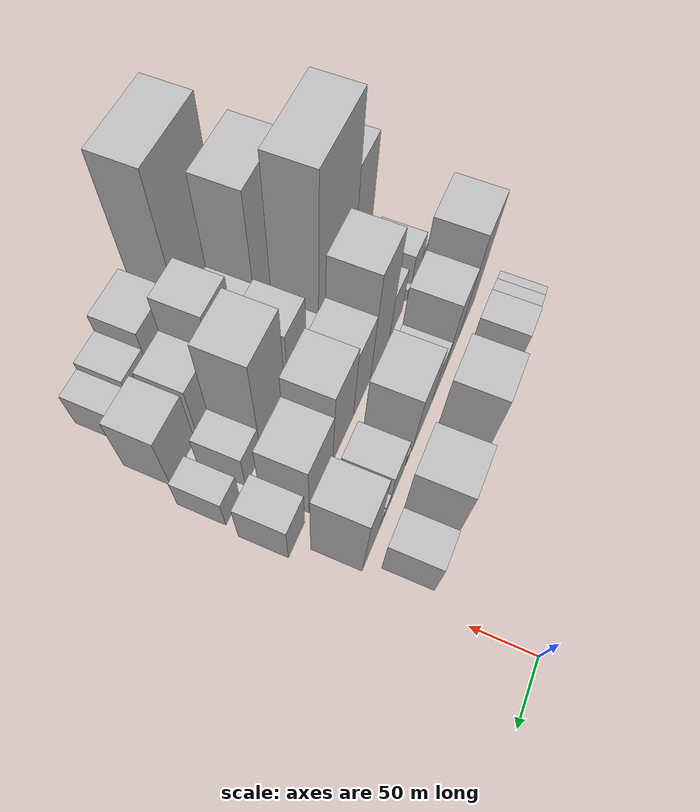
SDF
<sdf version="1.6">
 <world name="default">
  <model name="building_18">
   <static>1</static>
   <pose>100.0000 -264.2371 0 0.000000 0.000000 0.000000</pose>
   <link name="link">
    <pose>0 0 15.00 0 0 0</pose>
    <collision name="collision"><geometry><box><size>40.0000 15.0983 30.0000</size></box></geometry></collision>
    <visual name="visual">
     <cast_shadows>0</cast_shadows>
     <geometry><box><size>40.0000 15.0983 30.0000</size></box></geometry>
     <material>
      <script>
       <uri>model://HANNAS_wall/materials/scripts</uri>
       <uri>model://HANNAS_wall/materials/textures</uri>
       <name>vrc/HANNAS_wall</name>
      </script>
     </material>
    </visual>
   </link>
  </model>
  <model name="building_19">
   <static>1</static>
   <pose>100.0000 -245.3737 0 0.000000 0.000000 0.000000</pose>
   <link name="link">
    <pose>0 0 19.50 0 0 0</pose>
    <collision name="collision"><geometry><box><size>40.0000 22.6286 39.0000</size></box></geometry></collision>
    <visual name="visual">
     <cast_shadows>0</cast_shadows>
     <geometry><box><size>40.0000 22.6286 39.0000</size></box></geometry>
     <material>
      <script>
       <uri>model://HANNAS_wall/materials/scripts</uri>
       <uri>model://HANNAS_wall/materials/textures</uri>
       <name>vrc/HANNAS_wall</name>
      </script>
     </material>
    </visual>
   </link>
  </model>
  <model name="building_20">
   <static>1</static>
   <pose>100.0000 -219.8085 0 0.000000 0.000000 0.000000</pose>
   <link name="link">
    <pose>0 0 27.00 0 0 0</pose>
    <collision name="collision"><geometry><box><size>40.0000 28.5018 54.0000</size></box></geometry></collision>
    <visual name="visual">
     <cast_shadows>0</cast_shadows>
     <geometry><box><size>40.0000 28.5018 54.0000</size></box></geometry>
     <material>
      <script>
       <uri>model://HANNAS_wall/materials/scripts</uri>
       <uri>model://HANNAS_wall/materials/textures</uri>
       <name>vrc/HANNAS_wall</name>
      </script>
     </material>
    </visual>
   </link>
  </model>
  <model name="building_21">
   <static>1</static>
   <pose>100.0000 -200.2709 0 0.000000 0.000000 0.000000</pose>
   <link name="link">
    <pose>0 0 12.00 0 0 0</pose>
    <collision name="collision"><geometry><box><size>40.0000 10.5735 24.0000</size></box></geometry></collision>
    <visual name="visual">
     <cast_shadows>0</cast_shadows>
     <geometry><box><size>40.0000 10.5735 24.0000</size></box></geometry>
     <material>
      <script>
       <uri>model://HANNAS_wall/materials/scripts</uri>
       <uri>model://HANNAS_wall/materials/textures</uri>
       <name>vrc/HANNAS_wall</name>
      </script>
     </material>
    </visual>
   </link>
  </model>
  <model name="building_22">
   <static>1</static>
   <pose>100.0000 -174.5766 0 0.000000 0.000000 0.000000</pose>
   <link name="link">
    <pose>0 0 27.00 0 0 0</pose>
    <collision name="collision"><geometry><box><size>40.0000 30.8150 54.0000</size></box></geometry></collision>
    <visual name="visual">
     <cast_shadows>0</cast_shadows>
     <geometry><box><size>40.0000 30.8150 54.0000</size></box></geometry>
     <material>
      <script>
       <uri>model://HANNAS_wall/materials/scripts</uri>
       <uri>model://HANNAS_wall/materials/textures</uri>
       <name>vrc/HANNAS_wall</name>
      </script>
     </material>
    </visual>
   </link>
  </model>
  <model name="building_23">
   <static>1</static>
   <pose>100.0000 -139.5896 0 0.000000 0.000000 0.000000</pose>
   <link name="link">
    <pose>0 0 51.00 0 0 0</pose>
    <collision name="collision"><geometry><box><size>40.0000 39.1590 102.0000</size></box></geometry></collision>
    <visual name="visual">
     <cast_shadows>0</cast_shadows>
     <geometry><box><size>40.0000 39.1590 102.0000</size></box></geometry>
     <material>
      <script>
       <uri>model://HANNAS_wall/materials/scripts</uri>
       <uri>model://HANNAS_wall/materials/textures</uri>
       <name>vrc/HANNAS_wall</name>
      </script>
     </material>
    </visual>
   </link>
  </model>
  <model name="building_24">
   <static>1</static>
   <pose>100.0000 -112.6292 0 0.000000 0.000000 0.000000</pose>
   <link name="link">
    <pose>0 0 9.00 0 0 0</pose>
    <collision name="collision"><geometry><box><size>40.0000 8.7618 18.0000</size></box></geometry></collision>
    <visual name="visual">
     <cast_shadows>0</cast_shadows>
     <geometry><box><size>40.0000 8.7618 18.0000</size></box></geometry>
     <material>
      <script>
       <uri>model://HANNAS_wall/materials/scripts</uri>
       <uri>model://HANNAS_wall/materials/textures</uri>
       <name>vrc/HANNAS_wall</name>
      </script>
     </material>
    </visual>
   </link>
  </model>
  <model name="building_25">
   <static>1</static>
   <pose>100.0000 -92.9114 0 0.000000 0.000000 0.000000</pose>
   <link name="link">
    <pose>0 0 16.50 0 0 0</pose>
    <collision name="collision"><geometry><box><size>40.0000 16.6737 33.0000</size></box></geometry></collision>
    <visual name="visual">
     <cast_shadows>0</cast_shadows>
     <geometry><box><size>40.0000 16.6737 33.0000</size></box></geometry>
     <material>
      <script>
       <uri>model://HANNAS_wall/materials/scripts</uri>
       <uri>model://HANNAS_wall/materials/textures</uri>
       <name>vrc/HANNAS_wall</name>
      </script>
     </material>
    </visual>
   </link>
  </model>
  <model name="building_26">
   <static>1</static>
   <pose>100.0000 -65.4804 0 0.000000 0.000000 0.000000</pose>
   <link name="link">
    <pose>0 0 54.00 0 0 0</pose>
    <collision name="collision"><geometry><box><size>40.0000 38.1882 108.0000</size></box></geometry></collision>
    <visual name="visual">
     <cast_shadows>0</cast_shadows>
     <geometry><box><size>40.0000 38.1882 108.0000</size></box></geometry>
     <material>
      <script>
       <uri>model://HANNAS_wall/materials/scripts</uri>
       <uri>model://HANNAS_wall/materials/textures</uri>
       <name>vrc/HANNAS_wall</name>
      </script>
     </material>
    </visual>
   </link>
  </model>
  <model name="building_27">
   <static>1</static>
   <pose>100.0000 -28.5838 0 0.000000 0.000000 0.000000</pose>
   <link name="link">
    <pose>0 0 27.00 0 0 0</pose>
    <collision name="collision"><geometry><box><size>40.0000 29.6051 54.0000</size></box></geometry></collision>
    <visual name="visual">
     <cast_shadows>0</cast_shadows>
     <geometry><box><size>40.0000 29.6051 54.0000</size></box></geometry>
     <material>
      <script>
       <uri>model://HANNAS_wall/materials/scripts</uri>
       <uri>model://HANNAS_wall/materials/textures</uri>
       <name>vrc/HANNAS_wall</name>
      </script>
     </material>
    </visual>
   </link>
  </model>
  <model name="building_69">
   <static>1</static>
   <pose>152.0000 -235.4173 0 0.000000 0.000000 0.000000</pose>
   <link name="link">
    <pose>0 0 67.50 0 0 0</pose>
    <collision name="collision"><geometry><box><size>40.0000 42.8620 135.0000</size></box></geometry></collision>
    <visual name="visual">
     <cast_shadows>0</cast_shadows>
     <geometry><box><size>40.0000 42.8620 135.0000</size></box></geometry>
     <material>
      <script>
       <uri>model://HANNAS_wall/materials/scripts</uri>
       <uri>model://HANNAS_wall/materials/textures</uri>
       <name>vrc/HANNAS_wall</name>
      </script>
     </material>
    </visual>
   </link>
  </model>
  <model name="building_70">
   <static>1</static>
   <pose>152.0000 -196.4775 0 0.000000 0.000000 0.000000</pose>
   <link name="link">
    <pose>0 0 49.50 0 0 0</pose>
    <collision name="collision"><geometry><box><size>40.0000 35.0175 99.0000</size></box></geometry></collision>
    <visual name="visual">
     <cast_shadows>0</cast_shadows>
     <geometry><box><size>40.0000 35.0175 99.0000</size></box></geometry>
     <material>
      <script>
       <uri>model://HANNAS_wall/materials/scripts</uri>
       <uri>model://HANNAS_wall/materials/textures</uri>
       <name>vrc/HANNAS_wall</name>
      </script>
     </material>
    </visual>
   </link>
  </model>
  <model name="building_71">
   <static>1</static>
   <pose>152.0000 -165.6254 0 0.000000 0.000000 0.000000</pose>
   <link name="link">
    <pose>0 0 25.50 0 0 0</pose>
    <collision name="collision"><geometry><box><size>40.0000 26.6867 51.0000</size></box></geometry></collision>
    <visual name="visual">
     <cast_shadows>0</cast_shadows>
     <geometry><box><size>40.0000 26.6867 51.0000</size></box></geometry>
     <material>
      <script>
       <uri>model://HANNAS_wall/materials/scripts</uri>
       <uri>model://HANNAS_wall/materials/textures</uri>
       <name>vrc/HANNAS_wall</name>
      </script>
     </material>
    </visual>
   </link>
  </model>
  <model name="building_72">
   <static>1</static>
   <pose>152.0000 -129.5219 0 0.000000 0.000000 0.000000</pose>
   <link name="link">
    <pose>0 0 42.00 0 0 0</pose>
    <collision name="collision"><geometry><box><size>40.0000 45.5203 84.0000</size></box></geometry></collision>
    <visual name="visual">
     <cast_shadows>0</cast_shadows>
     <geometry><box><size>40.0000 45.5203 84.0000</size></box></geometry>
     <material>
      <script>
       <uri>model://HANNAS_wall/materials/scripts</uri>
       <uri>model://HANNAS_wall/materials/textures</uri>
       <name>vrc/HANNAS_wall</name>
      </script>
     </material>
    </visual>
   </link>
  </model>
  <model name="building_73">
   <static>1</static>
   <pose>152.0000 -97.8684 0 0.000000 0.000000 0.000000</pose>
   <link name="link">
    <pose>0 0 9.00 0 0 0</pose>
    <collision name="collision"><geometry><box><size>40.0000 7.7866 18.0000</size></box></geometry></collision>
    <visual name="visual">
     <cast_shadows>0</cast_shadows>
     <geometry><box><size>40.0000 7.7866 18.0000</size></box></geometry>
     <material>
      <script>
       <uri>model://HANNAS_wall/materials/scripts</uri>
       <uri>model://HANNAS_wall/materials/textures</uri>
       <name>vrc/HANNAS_wall</name>
      </script>
     </material>
    </visual>
   </link>
  </model>
  <model name="building_74">
   <static>1</static>
   <pose>152.0000 -74.6402 0 0.000000 0.000000 0.000000</pose>
   <link name="link">
    <pose>0 0 27.00 0 0 0</pose>
    <collision name="collision"><geometry><box><size>40.0000 30.6700 54.0000</size></box></geometry></collision>
    <visual name="visual">
     <cast_shadows>0</cast_shadows>
     <geometry><box><size>40.0000 30.6700 54.0000</size></box></geometry>
     <material>
      <script>
       <uri>model://HANNAS_wall/materials/scripts</uri>
       <uri>model://HANNAS_wall/materials/textures</uri>
       <name>vrc/HANNAS_wall</name>
      </script>
     </material>
    </visual>
   </link>
  </model>
  <model name="building_75">
   <static>1</static>
   <pose>152.0000 -53.9144 0 0.000000 0.000000 0.000000</pose>
   <link name="link">
    <pose>0 0 12.00 0 0 0</pose>
    <collision name="collision"><geometry><box><size>40.0000 10.7817 24.0000</size></box></geometry></collision>
    <visual name="visual">
     <cast_shadows>0</cast_shadows>
     <geometry><box><size>40.0000 10.7817 24.0000</size></box></geometry>
     <material>
      <script>
       <uri>model://HANNAS_wall/materials/scripts</uri>
       <uri>model://HANNAS_wall/materials/textures</uri>
       <name>vrc/HANNAS_wall</name>
      </script>
     </material>
    </visual>
   </link>
  </model>
  <model name="building_76">
   <static>1</static>
   <pose>152.0000 -44.0466 0 0.000000 0.000000 0.000000</pose>
   <link name="link">
    <pose>0 0 10.50 0 0 0</pose>
    <collision name="collision"><geometry><box><size>40.0000 8.9538 21.0000</size></box></geometry></collision>
    <visual name="visual">
     <cast_shadows>0</cast_shadows>
     <geometry><box><size>40.0000 8.9538 21.0000</size></box></geometry>
     <material>
      <script>
       <uri>model://HANNAS_wall/materials/scripts</uri>
       <uri>model://HANNAS_wall/materials/textures</uri>
       <name>vrc/HANNAS_wall</name>
      </script>
     </material>
    </visual>
   </link>
  </model>
  <model name="building_77">
   <static>1</static>
   <pose>152.0000 -22.8673 0 0.000000 0.000000 0.000000</pose>
   <link name="link">
    <pose>0 0 51.00 0 0 0</pose>
    <collision name="collision"><geometry><box><size>40.0000 33.4049 102.0000</size></box></geometry></collision>
    <visual name="visual">
     <cast_shadows>0</cast_shadows>
     <geometry><box><size>40.0000 33.4049 102.0000</size></box></geometry>
     <material>
      <script>
       <uri>model://HANNAS_wall/materials/scripts</uri>
       <uri>model://HANNAS_wall/materials/textures</uri>
       <name>vrc/HANNAS_wall</name>
      </script>
     </material>
    </visual>
   </link>
  </model>
  <model name="building_115">
   <static>1</static>
   <pose>204.0000 -273.6183 0 0.000000 0.000000 0.000000</pose>
   <link name="link">
    <pose>0 0 13.50 0 0 0</pose>
    <collision name="collision"><geometry><box><size>40.0000 11.3360 27.0000</size></box></geometry></collision>
    <visual name="visual">
     <cast_shadows>0</cast_shadows>
     <geometry><box><size>40.0000 11.3360 27.0000</size></box></geometry>
     <material>
      <script>
       <uri>model://HANNAS_wall/materials/scripts</uri>
       <uri>model://HANNAS_wall/materials/textures</uri>
       <name>vrc/HANNAS_wall</name>
      </script>
     </material>
    </visual>
   </link>
  </model>
  <model name="building_116">
   <static>1</static>
   <pose>204.0000 -254.4349 0 0.000000 0.000000 0.000000</pose>
   <link name="link">
    <pose>0 0 25.50 0 0 0</pose>
    <collision name="collision"><geometry><box><size>40.0000 27.0309 51.0000</size></box></geometry></collision>
    <visual name="visual">
     <cast_shadows>0</cast_shadows>
     <geometry><box><size>40.0000 27.0309 51.0000</size></box></geometry>
     <material>
      <script>
       <uri>model://HANNAS_wall/materials/scripts</uri>
       <uri>model://HANNAS_wall/materials/textures</uri>
       <name>vrc/HANNAS_wall</name>
      </script>
     </material>
    </visual>
   </link>
  </model>
  <model name="building_117">
   <static>1</static>
   <pose>204.0000 -237.3028 0 0.000000 0.000000 0.000000</pose>
   <link name="link">
    <pose>0 0 7.50 0 0 0</pose>
    <collision name="collision"><geometry><box><size>40.0000 7.2334 15.0000</size></box></geometry></collision>
    <visual name="visual">
     <cast_shadows>0</cast_shadows>
     <geometry><box><size>40.0000 7.2334 15.0000</size></box></geometry>
     <material>
      <script>
       <uri>model://HANNAS_wall/materials/scripts</uri>
       <uri>model://HANNAS_wall/materials/textures</uri>
       <name>vrc/HANNAS_wall</name>
      </script>
     </material>
    </visual>
   </link>
  </model>
  <model name="building_118">
   <static>1</static>
   <pose>204.0000 -208.9064 0 0.000000 0.000000 0.000000</pose>
   <link name="link">
    <pose>0 0 28.50 0 0 0</pose>
    <collision name="collision"><geometry><box><size>40.0000 29.5593 57.0000</size></box></geometry></collision>
    <visual name="visual">
     <cast_shadows>0</cast_shadows>
     <geometry><box><size>40.0000 29.5593 57.0000</size></box></geometry>
     <material>
      <script>
       <uri>model://HANNAS_wall/materials/scripts</uri>
       <uri>model://HANNAS_wall/materials/textures</uri>
       <name>vrc/HANNAS_wall</name>
      </script>
     </material>
    </visual>
   </link>
  </model>
  <model name="building_119">
   <static>1</static>
   <pose>204.0000 -172.9033 0 0.000000 0.000000 0.000000</pose>
   <link name="link">
    <pose>0 0 70.50 0 0 0</pose>
    <collision name="collision"><geometry><box><size>40.0000 42.4470 141.0000</size></box></geometry></collision>
    <visual name="visual">
     <cast_shadows>0</cast_shadows>
     <geometry><box><size>40.0000 42.4470 141.0000</size></box></geometry>
     <material>
      <script>
       <uri>model://HANNAS_wall/materials/scripts</uri>
       <uri>model://HANNAS_wall/materials/textures</uri>
       <name>vrc/HANNAS_wall</name>
      </script>
     </material>
    </visual>
   </link>
  </model>
  <model name="building_120">
   <static>1</static>
   <pose>204.0000 -133.9504 0 0.000000 0.000000 0.000000</pose>
   <link name="link">
    <pose>0 0 46.50 0 0 0</pose>
    <collision name="collision"><geometry><box><size>40.0000 35.4588 93.0000</size></box></geometry></collision>
    <visual name="visual">
     <cast_shadows>0</cast_shadows>
     <geometry><box><size>40.0000 35.4588 93.0000</size></box></geometry>
     <material>
      <script>
       <uri>model://HANNAS_wall/materials/scripts</uri>
       <uri>model://HANNAS_wall/materials/textures</uri>
       <name>vrc/HANNAS_wall</name>
      </script>
     </material>
    </visual>
   </link>
  </model>
  <model name="building_121">
   <static>1</static>
   <pose>204.0000 -95.6189 0 0.000000 0.000000 0.000000</pose>
   <link name="link">
    <pose>0 0 52.50 0 0 0</pose>
    <collision name="collision"><geometry><box><size>40.0000 41.2040 105.0000</size></box></geometry></collision>
    <visual name="visual">
     <cast_shadows>0</cast_shadows>
     <geometry><box><size>40.0000 41.2040 105.0000</size></box></geometry>
     <material>
      <script>
       <uri>model://HANNAS_wall/materials/scripts</uri>
       <uri>model://HANNAS_wall/materials/textures</uri>
       <name>vrc/HANNAS_wall</name>
      </script>
     </material>
    </visual>
   </link>
  </model>
  <model name="building_122">
   <static>1</static>
   <pose>204.0000 -52.8631 0 0.000000 0.000000 0.000000</pose>
   <link name="link">
    <pose>0 0 39.00 0 0 0</pose>
    <collision name="collision"><geometry><box><size>40.0000 44.3077 78.0000</size></box></geometry></collision>
    <visual name="visual">
     <cast_shadows>0</cast_shadows>
     <geometry><box><size>40.0000 44.3077 78.0000</size></box></geometry>
     <material>
      <script>
       <uri>model://HANNAS_wall/materials/scripts</uri>
       <uri>model://HANNAS_wall/materials/textures</uri>
       <name>vrc/HANNAS_wall</name>
      </script>
     </material>
    </visual>
   </link>
  </model>
  <model name="building_123">
   <static>1</static>
   <pose>204.0000 -8.3394 0 0.000000 0.000000 0.000000</pose>
   <link name="link">
    <pose>0 0 28.50 0 0 0</pose>
    <collision name="collision"><geometry><box><size>40.0000 28.7396 57.0000</size></box></geometry></collision>
    <visual name="visual">
     <cast_shadows>0</cast_shadows>
     <geometry><box><size>40.0000 28.7396 57.0000</size></box></geometry>
     <material>
      <script>
       <uri>model://HANNAS_wall/materials/scripts</uri>
       <uri>model://HANNAS_wall/materials/textures</uri>
       <name>vrc/HANNAS_wall</name>
      </script>
     </material>
    </visual>
   </link>
  </model>
  <model name="building_161">
   <static>1</static>
   <pose>256.0000 -262.8356 0 0.000000 0.000000 0.000000</pose>
   <link name="link">
    <pose>0 0 63.00 0 0 0</pose>
    <collision name="collision"><geometry><box><size>40.0000 38.4083 126.0000</size></box></geometry></collision>
    <visual name="visual">
     <cast_shadows>0</cast_shadows>
     <geometry><box><size>40.0000 38.4083 126.0000</size></box></geometry>
     <material>
      <script>
       <uri>model://HANNAS_wall/materials/scripts</uri>
       <uri>model://HANNAS_wall/materials/textures</uri>
       <name>vrc/HANNAS_wall</name>
      </script>
     </material>
    </visual>
   </link>
  </model>
  <model name="building_162">
   <static>1</static>
   <pose>256.0000 -205.4552 0 0.000000 0.000000 0.000000</pose>
   <link name="link">
    <pose>0 0 99.00 0 0 0</pose>
    <collision name="collision"><geometry><box><size>40.0000 76.3524 198.0000</size></box></geometry></collision>
    <visual name="visual">
     <cast_shadows>0</cast_shadows>
     <geometry><box><size>40.0000 76.3524 198.0000</size></box></geometry>
     <material>
      <script>
       <uri>model://HANNAS_wall/materials/scripts</uri>
       <uri>model://HANNAS_wall/materials/textures</uri>
       <name>vrc/HANNAS_wall</name>
      </script>
     </material>
    </visual>
   </link>
  </model>
  <model name="building_163">
   <static>1</static>
   <pose>256.0000 -155.4344 0 0.000000 0.000000 0.000000</pose>
   <link name="link">
    <pose>0 0 21.00 0 0 0</pose>
    <collision name="collision"><geometry><box><size>40.0000 23.6893 42.0000</size></box></geometry></collision>
    <visual name="visual">
     <cast_shadows>0</cast_shadows>
     <geometry><box><size>40.0000 23.6893 42.0000</size></box></geometry>
     <material>
      <script>
       <uri>model://HANNAS_wall/materials/scripts</uri>
       <uri>model://HANNAS_wall/materials/textures</uri>
       <name>vrc/HANNAS_wall</name>
      </script>
     </material>
    </visual>
   </link>
  </model>
  <model name="building_164">
   <static>1</static>
   <pose>256.0000 -126.2305 0 0.000000 0.000000 0.000000</pose>
   <link name="link">
    <pose>0 0 48.00 0 0 0</pose>
    <collision name="collision"><geometry><box><size>40.0000 34.7185 96.0000</size></box></geometry></collision>
    <visual name="visual">
     <cast_shadows>0</cast_shadows>
     <geometry><box><size>40.0000 34.7185 96.0000</size></box></geometry>
     <material>
      <script>
       <uri>model://HANNAS_wall/materials/scripts</uri>
       <uri>model://HANNAS_wall/materials/textures</uri>
       <name>vrc/HANNAS_wall</name>
      </script>
     </material>
    </visual>
   </link>
  </model>
  <model name="building_165">
   <static>1</static>
   <pose>256.0000 -80.9385 0 0.000000 0.000000 0.000000</pose>
   <link name="link">
    <pose>0 0 69.00 0 0 0</pose>
    <collision name="collision"><geometry><box><size>40.0000 45.8655 138.0000</size></box></geometry></collision>
    <visual name="visual">
     <cast_shadows>0</cast_shadows>
     <geometry><box><size>40.0000 45.8655 138.0000</size></box></geometry>
     <material>
      <script>
       <uri>model://HANNAS_wall/materials/scripts</uri>
       <uri>model://HANNAS_wall/materials/textures</uri>
       <name>vrc/HANNAS_wall</name>
      </script>
     </material>
    </visual>
   </link>
  </model>
  <model name="building_166">
   <static>1</static>
   <pose>256.0000 -44.5863 0 0.000000 0.000000 0.000000</pose>
   <link name="link">
    <pose>0 0 24.00 0 0 0</pose>
    <collision name="collision"><geometry><box><size>40.0000 26.8390 48.0000</size></box></geometry></collision>
    <visual name="visual">
     <cast_shadows>0</cast_shadows>
     <geometry><box><size>40.0000 26.8390 48.0000</size></box></geometry>
     <material>
      <script>
       <uri>model://HANNAS_wall/materials/scripts</uri>
       <uri>model://HANNAS_wall/materials/textures</uri>
       <name>vrc/HANNAS_wall</name>
      </script>
     </material>
    </visual>
   </link>
  </model>
  <model name="building_167">
   <static>1</static>
   <pose>256.0000 -9.5084 0 0.000000 0.000000 0.000000</pose>
   <link name="link">
    <pose>0 0 21.00 0 0 0</pose>
    <collision name="collision"><geometry><box><size>40.0000 23.3167 42.0000</size></box></geometry></collision>
    <visual name="visual">
     <cast_shadows>0</cast_shadows>
     <geometry><box><size>40.0000 23.3167 42.0000</size></box></geometry>
     <material>
      <script>
       <uri>model://HANNAS_wall/materials/scripts</uri>
       <uri>model://HANNAS_wall/materials/textures</uri>
       <name>vrc/HANNAS_wall</name>
      </script>
     </material>
    </visual>
   </link>
  </model>
  <model name="building_215">
   <static>1</static>
   <pose>308.0000 -248.6320 0 0.000000 0.000000 0.000000</pose>
   <link name="link">
    <pose>0 0 33.00 0 0 0</pose>
    <collision name="collision"><geometry><box><size>40.0000 37.8575 66.0000</size></box></geometry></collision>
    <visual name="visual">
     <cast_shadows>0</cast_shadows>
     <geometry><box><size>40.0000 37.8575 66.0000</size></box></geometry>
     <material>
      <script>
       <uri>model://HANNAS_wall/materials/scripts</uri>
       <uri>model://HANNAS_wall/materials/textures</uri>
       <name>vrc/HANNAS_wall</name>
      </script>
     </material>
    </visual>
   </link>
  </model>
  <model name="building_216">
   <static>1</static>
   <pose>308.0000 -225.9107 0 0.000000 0.000000 0.000000</pose>
   <link name="link">
    <pose>0 0 9.00 0 0 0</pose>
    <collision name="collision"><geometry><box><size>40.0000 7.5851 18.0000</size></box></geometry></collision>
    <visual name="visual">
     <cast_shadows>0</cast_shadows>
     <geometry><box><size>40.0000 7.5851 18.0000</size></box></geometry>
     <material>
      <script>
       <uri>model://HANNAS_wall/materials/scripts</uri>
       <uri>model://HANNAS_wall/materials/textures</uri>
       <name>vrc/HANNAS_wall</name>
      </script>
     </material>
    </visual>
   </link>
  </model>
  <model name="building_217">
   <static>1</static>
   <pose>308.0000 -191.8135 0 0.000000 0.000000 0.000000</pose>
   <link name="link">
    <pose>0 0 81.00 0 0 0</pose>
    <collision name="collision"><geometry><box><size>40.0000 60.6093 162.0000</size></box></geometry></collision>
    <visual name="visual">
     <cast_shadows>0</cast_shadows>
     <geometry><box><size>40.0000 60.6093 162.0000</size></box></geometry>
     <material>
      <script>
       <uri>model://HANNAS_wall/materials/scripts</uri>
       <uri>model://HANNAS_wall/materials/textures</uri>
       <name>vrc/HANNAS_wall</name>
      </script>
     </material>
    </visual>
   </link>
  </model>
  <model name="building_218">
   <static>1</static>
   <pose>308.0000 -144.0324 0 0.000000 0.000000 0.000000</pose>
   <link name="link">
    <pose>0 0 30.00 0 0 0</pose>
    <collision name="collision"><geometry><box><size>40.0000 34.9527 60.0000</size></box></geometry></collision>
    <visual name="visual">
     <cast_shadows>0</cast_shadows>
     <geometry><box><size>40.0000 34.9527 60.0000</size></box></geometry>
     <material>
      <script>
       <uri>model://HANNAS_wall/materials/scripts</uri>
       <uri>model://HANNAS_wall/materials/textures</uri>
       <name>vrc/HANNAS_wall</name>
      </script>
     </material>
    </visual>
   </link>
  </model>
  <model name="building_219">
   <static>1</static>
   <pose>308.0000 -108.6653 0 0.000000 0.000000 0.000000</pose>
   <link name="link">
    <pose>0 0 57.00 0 0 0</pose>
    <collision name="collision"><geometry><box><size>40.0000 35.7815 114.0000</size></box></geometry></collision>
    <visual name="visual">
     <cast_shadows>0</cast_shadows>
     <geometry><box><size>40.0000 35.7815 114.0000</size></box></geometry>
     <material>
      <script>
       <uri>model://HANNAS_wall/materials/scripts</uri>
       <uri>model://HANNAS_wall/materials/textures</uri>
       <name>vrc/HANNAS_wall</name>
      </script>
     </material>
    </visual>
   </link>
  </model>
  <model name="building_220">
   <static>1</static>
   <pose>308.0000 -71.8554 0 0.000000 0.000000 0.000000</pose>
   <link name="link">
    <pose>0 0 36.00 0 0 0</pose>
    <collision name="collision"><geometry><box><size>40.0000 37.8383 72.0000</size></box></geometry></collision>
    <visual name="visual">
     <cast_shadows>0</cast_shadows>
     <geometry><box><size>40.0000 37.8383 72.0000</size></box></geometry>
     <material>
      <script>
       <uri>model://HANNAS_wall/materials/scripts</uri>
       <uri>model://HANNAS_wall/materials/textures</uri>
       <name>vrc/HANNAS_wall</name>
      </script>
     </material>
    </visual>
   </link>
  </model>
  <model name="building_221">
   <static>1</static>
   <pose>308.0000 -29.0162 0 0.000000 0.000000 0.000000</pose>
   <link name="link">
    <pose>0 0 37.50 0 0 0</pose>
    <collision name="collision"><geometry><box><size>40.0000 39.8400 75.0000</size></box></geometry></collision>
    <visual name="visual">
     <cast_shadows>0</cast_shadows>
     <geometry><box><size>40.0000 39.8400 75.0000</size></box></geometry>
     <material>
      <script>
       <uri>model://HANNAS_wall/materials/scripts</uri>
       <uri>model://HANNAS_wall/materials/textures</uri>
       <name>vrc/HANNAS_wall</name>
      </script>
     </material>
    </visual>
   </link>
  </model>
  <model name="building_262">
   <static>1</static>
   <pose>360.0000 -270.1277 0 0.000000 0.000000 0.000000</pose>
   <link name="link">
    <pose>0 0 16.50 0 0 0</pose>
    <collision name="collision"><geometry><box><size>40.0000 17.4163 33.0000</size></box></geometry></collision>
    <visual name="visual">
     <cast_shadows>0</cast_shadows>
     <geometry><box><size>40.0000 17.4163 33.0000</size></box></geometry>
     <material>
      <script>
       <uri>model://HANNAS_wall/materials/scripts</uri>
       <uri>model://HANNAS_wall/materials/textures</uri>
       <name>vrc/HANNAS_wall</name>
      </script>
     </material>
    </visual>
   </link>
  </model>
  <model name="building_263">
   <static>1</static>
   <pose>360.0000 -251.0175 0 0.000000 0.000000 0.000000</pose>
   <link name="link">
    <pose>0 0 9.00 0 0 0</pose>
    <collision name="collision"><geometry><box><size>40.0000 8.8040 18.0000</size></box></geometry></collision>
    <visual name="visual">
     <cast_shadows>0</cast_shadows>
     <geometry><box><size>40.0000 8.8040 18.0000</size></box></geometry>
     <material>
      <script>
       <uri>model://HANNAS_wall/materials/scripts</uri>
       <uri>model://HANNAS_wall/materials/textures</uri>
       <name>vrc/HANNAS_wall</name>
      </script>
     </material>
    </visual>
   </link>
  </model>
  <model name="building_264">
   <static>1</static>
   <pose>360.0000 -240.9426 0 0.000000 0.000000 0.000000</pose>
   <link name="link">
    <pose>0 0 13.50 0 0 0</pose>
    <collision name="collision"><geometry><box><size>40.0000 11.3458 27.0000</size></box></geometry></collision>
    <visual name="visual">
     <cast_shadows>0</cast_shadows>
     <geometry><box><size>40.0000 11.3458 27.0000</size></box></geometry>
     <material>
      <script>
       <uri>model://HANNAS_wall/materials/scripts</uri>
       <uri>model://HANNAS_wall/materials/textures</uri>
       <name>vrc/HANNAS_wall</name>
      </script>
     </material>
    </visual>
   </link>
  </model>
  <model name="building_265">
   <static>1</static>
   <pose>360.0000 -216.0686 0 0.000000 0.000000 0.000000</pose>
   <link name="link">
    <pose>0 0 22.50 0 0 0</pose>
    <collision name="collision"><geometry><box><size>40.0000 24.4021 45.0000</size></box></geometry></collision>
    <visual name="visual">
     <cast_shadows>0</cast_shadows>
     <geometry><box><size>40.0000 24.4021 45.0000</size></box></geometry>
     <material>
      <script>
       <uri>model://HANNAS_wall/materials/scripts</uri>
       <uri>model://HANNAS_wall/materials/textures</uri>
       <name>vrc/HANNAS_wall</name>
      </script>
     </material>
    </visual>
   </link>
  </model>
  <model name="building_266">
   <static>1</static>
   <pose>360.0000 -167.8053 0 0.000000 0.000000 0.000000</pose>
   <link name="link">
    <pose>0 0 94.50 0 0 0</pose>
    <collision name="collision"><geometry><box><size>40.0000 72.1244 189.0000</size></box></geometry></collision>
    <visual name="visual">
     <cast_shadows>0</cast_shadows>
     <geometry><box><size>40.0000 72.1244 189.0000</size></box></geometry>
     <material>
      <script>
       <uri>model://HANNAS_wall/materials/scripts</uri>
       <uri>model://HANNAS_wall/materials/textures</uri>
       <name>vrc/HANNAS_wall</name>
      </script>
     </material>
    </visual>
   </link>
  </model>
  <model name="building_267">
   <static>1</static>
   <pose>360.0000 -102.3647 0 0.000000 0.000000 0.000000</pose>
   <link name="link">
    <pose>0 0 37.50 0 0 0</pose>
    <collision name="collision"><geometry><box><size>40.0000 44.7569 75.0000</size></box></geometry></collision>
    <visual name="visual">
     <cast_shadows>0</cast_shadows>
     <geometry><box><size>40.0000 44.7569 75.0000</size></box></geometry>
     <material>
      <script>
       <uri>model://HANNAS_wall/materials/scripts</uri>
       <uri>model://HANNAS_wall/materials/textures</uri>
       <name>vrc/HANNAS_wall</name>
      </script>
     </material>
    </visual>
   </link>
  </model>
  <model name="building_268">
   <static>1</static>
   <pose>360.0000 -65.0421 0 0.000000 0.000000 0.000000</pose>
   <link name="link">
    <pose>0 0 27.00 0 0 0</pose>
    <collision name="collision"><geometry><box><size>40.0000 29.8884 54.0000</size></box></geometry></collision>
    <visual name="visual">
     <cast_shadows>0</cast_shadows>
     <geometry><box><size>40.0000 29.8884 54.0000</size></box></geometry>
     <material>
      <script>
       <uri>model://HANNAS_wall/materials/scripts</uri>
       <uri>model://HANNAS_wall/materials/textures</uri>
       <name>vrc/HANNAS_wall</name>
      </script>
     </material>
    </visual>
   </link>
  </model>
  <model name="building_269">
   <static>1</static>
   <pose>360.0000 -37.5122 0 0.000000 0.000000 0.000000</pose>
   <link name="link">
    <pose>0 0 22.50 0 0 0</pose>
    <collision name="collision"><geometry><box><size>40.0000 25.1714 45.0000</size></box></geometry></collision>
    <visual name="visual">
     <cast_shadows>0</cast_shadows>
     <geometry><box><size>40.0000 25.1714 45.0000</size></box></geometry>
     <material>
      <script>
       <uri>model://HANNAS_wall/materials/scripts</uri>
       <uri>model://HANNAS_wall/materials/textures</uri>
       <name>vrc/HANNAS_wall</name>
      </script>
     </material>
    </visual>
   </link>
  </model>
 </world>
</sdf>
